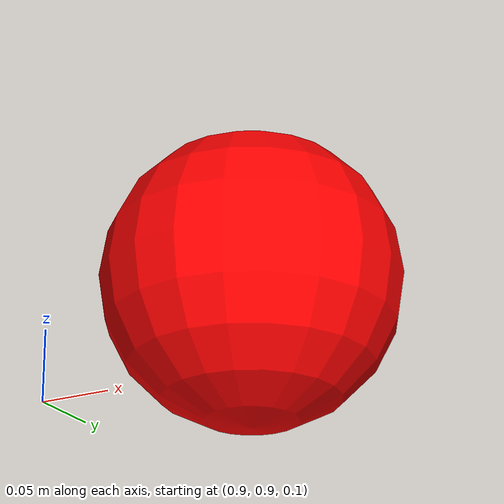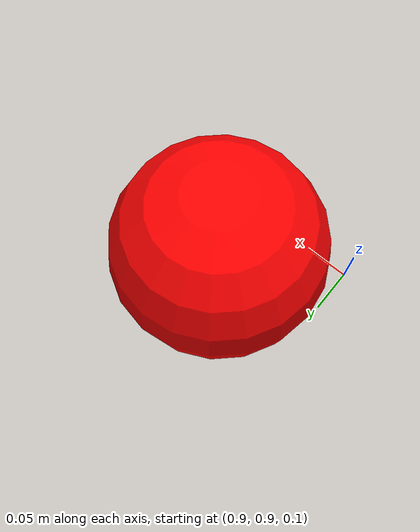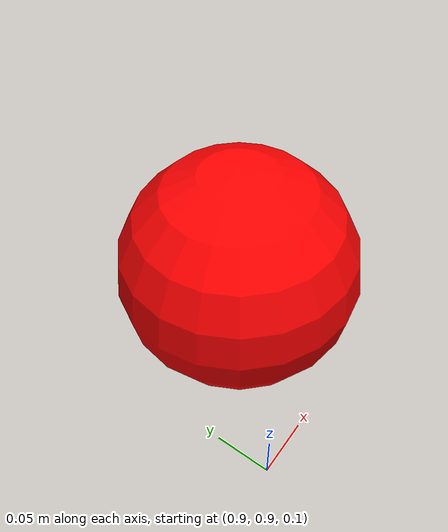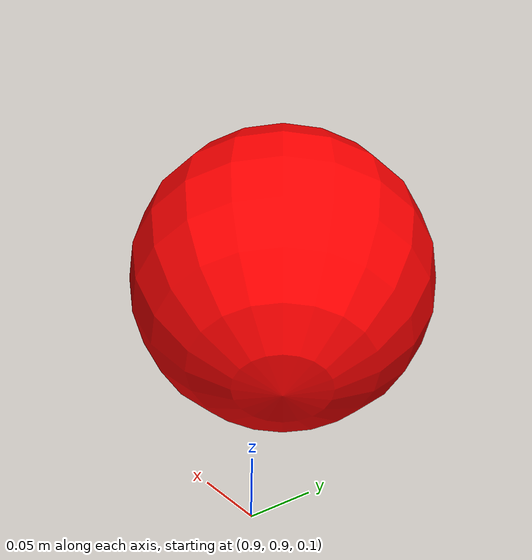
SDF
<?xml version="1.0"?>
<sdf version="1.4">
   <model name="soccer">
   <pose>1 1 0.2 0 0 0</pose>
        <link name ='link'>
        <pose>0 0 0 0 0 0</pose>
<!-- inertia based on solid sphere 2/5 mr^2 -->
	<inertial>
           <pose>0 0 0 0 0 0</pose>
           <mass>0.42</mass>
           <inertia>
             <ixx>0.00195</ixx>
             <ixy>0.00195</ixy>
             <ixz>0.00195</ixz>
             <iyy>0</iyy>
             <iyz>0</iyz>
             <izz>0</izz>
           </inertia>
        </inertial>
        <collision name ='collision'>
           <geometry>
              <sphere><radius>0.1055</radius></sphere>
           </geometry>

	 <surface>
            <friction>
              <ode>
                <mu>1.00000</mu>
                <mu2>1.00000</mu2>
                <fdir1>0.000000 0.000000 0.000000</fdir1>
                <slip1>1.000000</slip1>
                <slip2>1.000000</slip2>
              </ode>
            </friction>
          </surface>
        </collision>
        <visual name ='visual'>
           <geometry>
               <sphere><radius>0.1055</radius></sphere>
           </geometry>
	   <material>
   		 <ambient>1 0 0 1</ambient>
    		 <diffuse>1 0 0 1</diffuse>
   		 <specular>0.1 0.1 0.1 1</specular>
   		 <emissive>0 0 0 0</emissive>
 	   </material>
        </visual>
	<sensor name="my_contact" type="contact">
	<plugin name="my_plugin" filename="libcontact.so"/>
          <contact>
            <collision>collision</collision>
          </contact>
        </sensor>
        </link>
	 <plugin filename="libsoccer_plugin.so" name="soccer_plugin" />
     </model>

</sdf>
